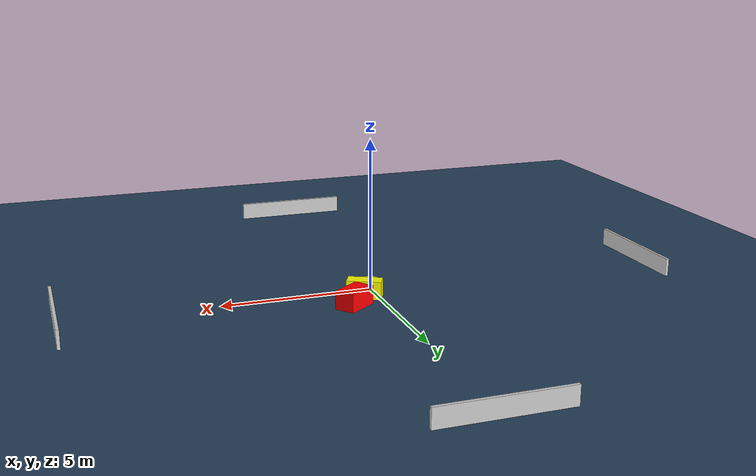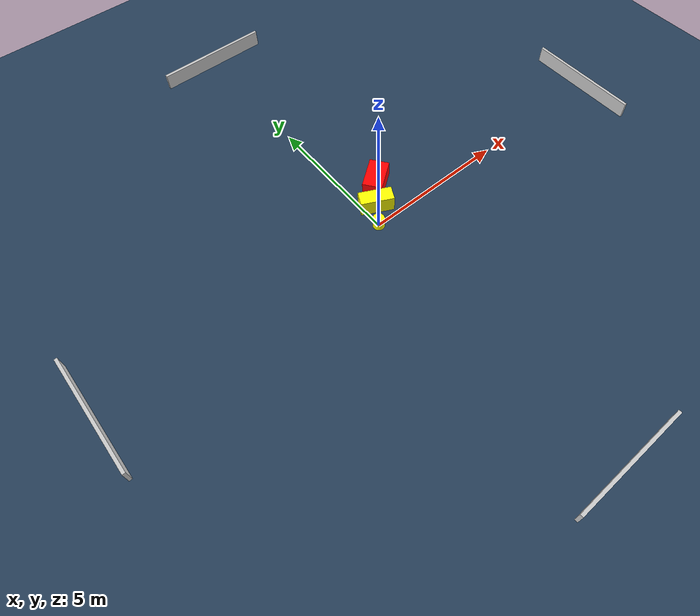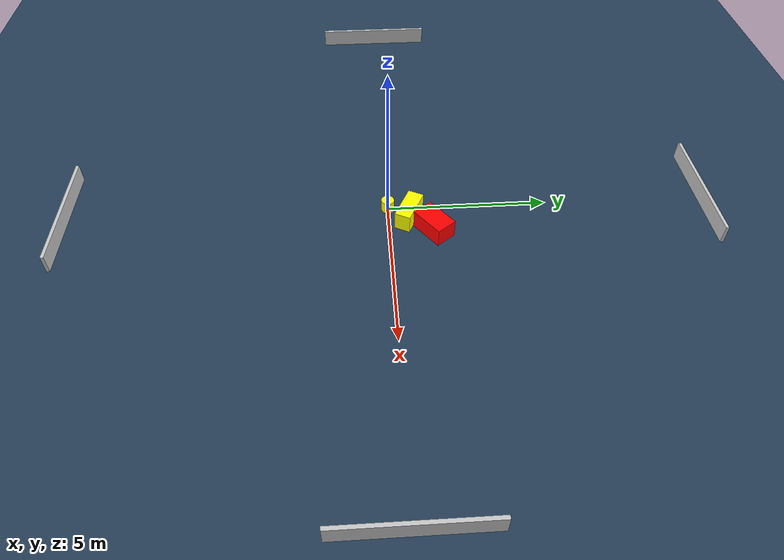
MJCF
<?xml version="1.0" ?>
<mujoco model="generated_environment">
  <option timestep="0.01" integrator="RK4" cone="elliptic"/>
  <default>
    <geom density="1"/>
  </default>
  <asset>
    <texture builtin="gradient" height="3072" name="skybox" rgb1="0.3 0.5 0.7" rgb2="0 0 0" type="skybox" width="512"/>
    <texture builtin="checker" height="300" name="groundplane" rgb1="0.2 0.3 0.4" rgb2="0.1 0.2 0.3" type="2d" width="300"/>
    <material name="groundplane" reflectance="0.2" texrepeat="5 5" texture="groundplane"/>
  </asset>
  <worldbody>
    <light dir="0 0 -1" directional="true" pos="0 0 1.5"/>
    <geom condim="3" friction="0.5 0.005 0.001" material="groundplane" name="floor" pos="0 0 0" size="0 0 0.05" type="plane"/>
    <body name="walls">
      <geom name="wall_1" condim="4" pos="-10.0 0.0 0.3" rgba="0.800000011920929 0.800000011920929 0.800000011920929 1.0" size="0.05 2.0 0.3" type="box"/>
      <geom name="wall_2" condim="4" pos="10.0 0.0 0.3" rgba="0.800000011920929 0.800000011920929 0.800000011920929 1.0" size="0.05 2.0 0.3" type="box"/>
      <geom name="wall_3" condim="4" pos="0.0 -10.0 0.3" rgba="0.800000011920929 0.800000011920929 0.800000011920929 1.0" size="2.0 0.05 0.3" type="box"/>
      <geom name="wall_4" condim="4" pos="0.0 10.0 0.3" rgba="0.800000011920929 0.800000011920929 0.800000011920929 1.0" size="2.0 0.05 0.3" type="box"/>
    </body>
    <body name="robot">
      <joint name="joint_x" type="slide" pos="0 0 0" axis="1 0 0"/>
      <joint name="joint_y" type="slide" pos="0 0 0" axis="0 1 0"/>
      <geom name="robot" type="cylinder" pos="0.0 0.0 0.2" size="0.2 0.2 0.0" mass="5.0" friction="1.0 0.005 0.0001" condim="4" rgba="1.0 1.0 0.0 1.0"/>
    </body>
    <body name="obstacle_1_movable">
      <geom name="obstacle_1_movable" condim="4" pos="0.4250106010979449 0.6401171544925507 0.3" euler="0 0 243.3296919341412" friction="0.0 0.005 0.001" rgba="1.0 1.0 0.0 1.0" size="0.24680084644963005 0.563034908938874 0.3" type="box" mass="0.1"/>
      <joint type="free"/>
    </body>
    <body name="obstacle_2_static">
      <geom name="obstacle_2_static" condim="4" pos="1.013778254421727 1.355874423200228 0.3" euler="0 0 36.92737220880553" friction="0.0 0.005 0.001" rgba="1.0 0.0 0.0 1.0" size="0.5521036169124331 0.3367206528069605 0.3" type="box"/>
    </body>
  </worldbody>
  <actuator>
    <motor name="actuator_x" joint="joint_x" gear="1" ctrlrange="-1 1"/>
    <motor name="actuator_y" joint="joint_y" gear="1" ctrlrange="-1 1"/>
  </actuator>
</mujoco>
